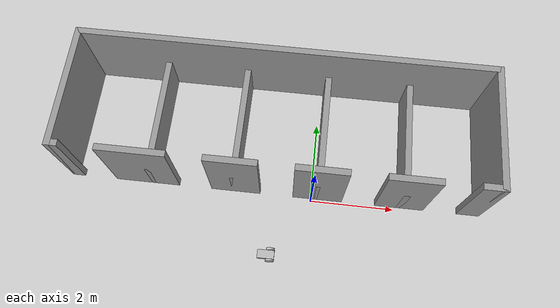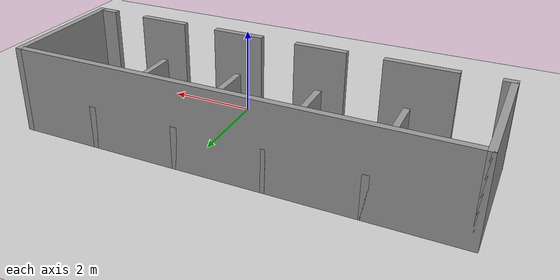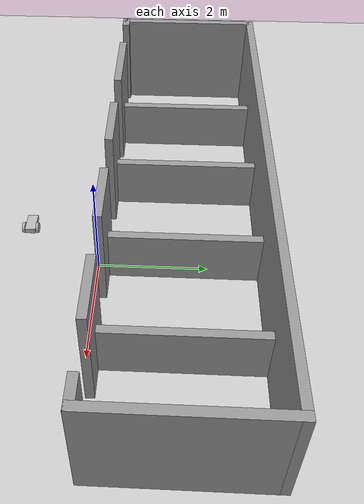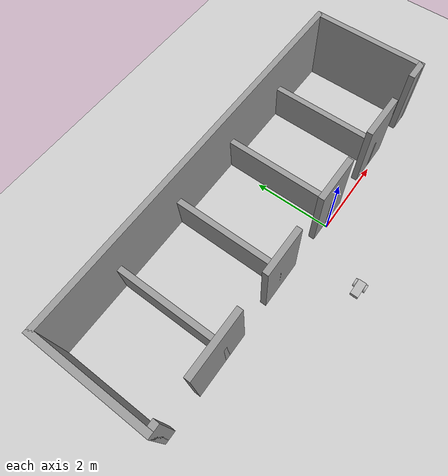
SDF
<sdf version="1.7">
 <world name="default">
  <light name="sun" type="directional">
   <diffuse>0.8 0.8 0.8 1</diffuse>
   <specular>0.2 0.2 0.2 1</specular>
   <attenuation>
    <range>1000</range>
    <constant>0.9</constant>
    <linear>0.01</linear>
    <quadratic>0.001</quadratic>
   </attenuation>
   <direction>-0.5 0.1 -0.9</direction>
   <spot><inner_angle>0</inner_angle><outer_angle>0</outer_angle><falloff>0</falloff></spot>
  </light>
  <model name="ground_plane">
   <static>1</static>
   <link name="link">
    <collision name="collision">
     <geometry><plane><normal>0 0 1</normal><size>100 100</size></plane></geometry>
     <surface><friction><ode><mu>100</mu><mu2>50</mu2></ode></friction></surface>
    </collision>
    <visual name="visual">
     <cast_shadows>0</cast_shadows>
     <geometry><plane><normal>0 0 1</normal><size>100 100</size></plane></geometry>
     <material>
      <script><uri>file://media/materials/scripts/gazebo.material</uri><name>Gazebo/Grey</name></script>
     </material>
    </visual>
   </link>
  </model>
  <gravity>0 0 -9.8</gravity>
  <magnetic_field>6e-06 2.3e-05 -4.2e-05</magnetic_field>
  <atmosphere type="adiabatic"/>
  <physics type="ode">
   <max_step_size>0.001</max_step_size>
   <real_time_factor>1</real_time_factor>
   <real_time_update_rate>1000</real_time_update_rate>
  </physics>
  <scene><ambient>0.4 0.4 0.4 1</ambient><background>0.7 0.7 0.7 1</background><shadows>1</shadows></scene>
  <spherical_coordinates>
   <surface_model>EARTH_WGS84</surface_model>
   <latitude_deg>0</latitude_deg>
   <longitude_deg>0</longitude_deg>
   <elevation>0</elevation>
   <heading_deg>0</heading_deg>
  </spherical_coordinates>
  <model name="Garage_1">
   <pose>-0.922682 1.57332 0 0 -0 0</pose>
   <link name="Wall_0">
    <pose>0 -1.425 0 0 -0 0</pose>
    <visual name="Wall_0_Visual_0">
     <pose>-4.8475 0 1 0 -0 0</pose>
     <geometry><box><size>0.305 0.15 2</size></box></geometry>
     <material>
      <script><uri>file://media/materials/scripts/gazebo.material</uri><name>Gazebo/Grey</name></script>
      <ambient>1 1 1 1</ambient>
     </material>
     <meta><layer>0</layer></meta>
    </visual>
    <collision name="Wall_0_Collision_0">
     <geometry><box><size>0.305 0.15 2</size></box></geometry>
     <pose>-4.8475 0 1 0 -0 0</pose>
    </collision>
    <visual name="Wall_0_Visual_1">
     <pose>-3.11 0 1 0 -0 0</pose>
     <geometry><box><size>1.57 0.15 2</size></box></geometry>
     <material>
      <script><uri>file://media/materials/scripts/gazebo.material</uri><name>Gazebo/Grey</name></script>
      <ambient>1 1 1 1</ambient>
     </material>
     <meta><layer>0</layer></meta>
    </visual>
    <collision name="Wall_0_Collision_1">
     <geometry><box><size>1.57 0.15 2</size></box></geometry>
     <pose>-3.11 0 1 0 -0 0</pose>
    </collision>
    <visual name="Wall_0_Visual_2">
     <pose>-0.925 0 1 0 -0 0</pose>
     <geometry><box><size>1.2 0.15 2</size></box></geometry>
     <material>
      <script><uri>file://media/materials/scripts/gazebo.material</uri><name>Gazebo/Grey</name></script>
      <ambient>1 1 1 1</ambient>
     </material>
     <meta><layer>0</layer></meta>
    </visual>
    <collision name="Wall_0_Collision_2">
     <geometry><box><size>1.2 0.15 2</size></box></geometry>
     <pose>-0.925 0 1 0 -0 0</pose>
    </collision>
    <visual name="Wall_0_Visual_3">
     <pose>1.075 0 1 0 -0 0</pose>
     <geometry><box><size>1.2 0.15 2</size></box></geometry>
     <material>
      <script><uri>file://media/materials/scripts/gazebo.material</uri><name>Gazebo/Grey</name></script>
      <ambient>1 1 1 1</ambient>
     </material>
     <meta><layer>0</layer></meta>
    </visual>
    <collision name="Wall_0_Collision_3">
     <geometry><box><size>1.2 0.15 2</size></box></geometry>
     <pose>1.075 0 1 0 -0 0</pose>
    </collision>
    <visual name="Wall_0_Visual_4">
     <pose>3.065 0 1 0 -0 0</pose>
     <geometry><box><size>1.18 0.15 2</size></box></geometry>
     <material>
      <script><uri>file://media/materials/scripts/gazebo.material</uri><name>Gazebo/Grey</name></script>
      <ambient>1 1 1 1</ambient>
     </material>
     <meta><layer>0</layer></meta>
    </visual>
    <collision name="Wall_0_Collision_4">
     <geometry><box><size>1.18 0.15 2</size></box></geometry>
     <pose>3.065 0 1 0 -0 0</pose>
    </collision>
    <visual name="Wall_0_Visual_5">
     <pose>4.7275 0 1 0 -0 0</pose>
     <geometry><box><size>0.545001 0.15 2</size></box></geometry>
     <material>
      <script><uri>file://media/materials/scripts/gazebo.material</uri><name>Gazebo/Grey</name></script>
      <ambient>1 1 1 1</ambient>
     </material>
     <meta><layer>0</layer></meta>
    </visual>
    <collision name="Wall_0_Collision_5">
     <geometry><box><size>0.545001 0.15 2</size></box></geometry>
     <pose>4.7275 0 1 0 -0 0</pose>
    </collision>
   </link>
   <link name="Wall_11">
    <collision name="Wall_11_Collision">
     <geometry><box><size>3 0.15 1</size></box></geometry>
     <pose>0 0 0.5 0 -0 0</pose>
    </collision>
    <visual name="Wall_11_Visual">
     <pose>0 0 0.5 0 -0 0</pose>
     <geometry><box><size>3 0.15 1</size></box></geometry>
     <material>
      <script><uri>file://media/materials/scripts/gazebo.material</uri><name>Gazebo/Grey</name></script>
      <ambient>1 1 1 1</ambient>
     </material>
     <meta><layer>0</layer></meta>
    </visual>
    <pose>-0.935 0 0 0 -0 1.5708</pose>
   </link>
   <link name="Wall_13">
    <collision name="Wall_13_Collision">
     <geometry><box><size>3 0.15 1</size></box></geometry>
     <pose>0 0 0.5 0 -0 0</pose>
    </collision>
    <visual name="Wall_13_Visual">
     <pose>0 0 0.5 0 -0 0</pose>
     <geometry><box><size>3 0.15 1</size></box></geometry>
     <material>
      <script><uri>file://media/materials/scripts/gazebo.material</uri><name>Gazebo/Grey</name></script>
      <ambient>1 1 1 1</ambient>
     </material>
     <meta><layer>0</layer></meta>
    </visual>
    <pose>1.075 0 0 0 -0 1.5708</pose>
   </link>
   <link name="Wall_15">
    <collision name="Wall_15_Collision">
     <geometry><box><size>3 0.15 1</size></box></geometry>
     <pose>0 0 0.5 0 -0 0</pose>
    </collision>
    <visual name="Wall_15_Visual">
     <pose>0 0 0.5 0 -0 0</pose>
     <geometry><box><size>3 0.15 1</size></box></geometry>
     <material>
      <script><uri>file://media/materials/scripts/gazebo.material</uri><name>Gazebo/Grey</name></script>
      <ambient>1 1 1 1</ambient>
     </material>
     <meta><layer>0</layer></meta>
    </visual>
    <pose>3.075 0 0 0 -0 1.5708</pose>
   </link>
   <link name="Wall_3">
    <collision name="Wall_3_Collision">
     <geometry><box><size>3 0.15 2</size></box></geometry>
     <pose>0 0 1 0 -0 0</pose>
    </collision>
    <visual name="Wall_3_Visual">
     <pose>0 0 1 0 -0 0</pose>
     <geometry><box><size>3 0.15 2</size></box></geometry>
     <material>
      <script><uri>file://media/materials/scripts/gazebo.material</uri><name>Gazebo/Grey</name></script>
      <ambient>1 1 1 1</ambient>
     </material>
     <meta><layer>0</layer></meta>
    </visual>
    <pose>-4.925 0 0 0 -0 1.5708</pose>
   </link>
   <link name="Wall_5">
    <collision name="Wall_5_Collision">
     <geometry><box><size>3 0.15 2</size></box></geometry>
     <pose>0 0 1 0 -0 0</pose>
    </collision>
    <visual name="Wall_5_Visual">
     <pose>0 0 1 0 -0 0</pose>
     <geometry><box><size>3 0.15 2</size></box></geometry>
     <material>
      <script><uri>file://media/materials/scripts/gazebo.material</uri><name>Gazebo/Grey</name></script>
      <ambient>1 1 1 1</ambient>
     </material>
     <meta><layer>0</layer></meta>
    </visual>
    <pose>4.925 0 0 0 -0 1.5708</pose>
   </link>
   <link name="Wall_7">
    <collision name="Wall_7_Collision">
     <geometry><box><size>10 0.15 2</size></box></geometry>
     <pose>0 0 1 0 -0 0</pose>
    </collision>
    <visual name="Wall_7_Visual">
     <pose>0 0 1 0 -0 0</pose>
     <geometry><box><size>10 0.15 2</size></box></geometry>
     <material>
      <script><uri>file://media/materials/scripts/gazebo.material</uri><name>Gazebo/Grey</name></script>
      <ambient>1 1 1 1</ambient>
     </material>
     <meta><layer>0</layer></meta>
    </visual>
    <pose>0 1.425 0 0 -0 0</pose>
   </link>
   <link name="Wall_9">
    <collision name="Wall_9_Collision">
     <geometry><box><size>3 0.15 1</size></box></geometry>
     <pose>0 0 0.5 0 -0 0</pose>
    </collision>
    <visual name="Wall_9_Visual">
     <pose>0 0 0.5 0 -0 0</pose>
     <geometry><box><size>3 0.15 1</size></box></geometry>
     <material>
      <script><uri>file://media/materials/scripts/gazebo.material</uri><name>Gazebo/Grey</name></script>
      <ambient>1 1 1 1</ambient>
     </material>
     <meta><layer>0</layer></meta>
    </visual>
    <pose>-2.925 0 0 0 -0 1.5708</pose>
   </link>
   <static>1</static>
  </model>
  <model name="my_robot_1">
   <static>0</static>
   <link name="chassis">
    <pose>0 0 0.1 0 -0 0</pose>
    <collision name="collision"><geometry><box><size>0.4 0.2 0.1</size></box></geometry></collision>
    <visual name="visual"><geometry><box><size>0.4 0.2 0.1</size></box></geometry></visual>
    <collision name="caster_collision">
     <pose>-0.15 0 -0.05 0 -0 0</pose>
     <geometry><sphere><radius>0.05</radius></sphere></geometry>
     <surface><friction><ode><mu>0</mu><mu2>0</mu2><slip1>1</slip1><slip2>1</slip2></ode></friction></surface>
    </collision>
    <visual name="caster_visual">
     <pose>-0.15 0 -0.05 0 -0 0</pose>
     <geometry><sphere><radius>0.05</radius></sphere></geometry>
    </visual>
    <inertial>
     <inertia><ixx>1</ixx><ixy>0</ixy><ixz>0</ixz><iyy>1</iyy><iyz>0</iyz><izz>1</izz></inertia>
     <mass>1</mass>
    </inertial>
   </link>
   <link name="left_wheel">
    <pose>0.1 0.13 0.1 -0 1.5707 1.5707</pose>
    <collision name="collision">
     <geometry><cylinder><radius>0.1</radius><length>0.05</length></cylinder></geometry>
    </collision>
    <visual name="visual">
     <geometry><cylinder><radius>0.1</radius><length>0.05</length></cylinder></geometry>
    </visual>
    <inertial>
     <inertia><ixx>1</ixx><ixy>0</ixy><ixz>0</ixz><iyy>1</iyy><iyz>0</iyz><izz>1</izz></inertia>
     <mass>1</mass>
    </inertial>
   </link>
   <link name="right_wheel">
    <pose>0.1 -0.13 0.1 -0 1.5707 1.5707</pose>
    <collision name="collision">
     <geometry><cylinder><radius>0.1</radius><length>0.05</length></cylinder></geometry>
    </collision>
    <visual name="visual">
     <geometry><cylinder><radius>0.1</radius><length>0.05</length></cylinder></geometry>
    </visual>
    <inertial>
     <inertia><ixx>1</ixx><ixy>0</ixy><ixz>0</ixz><iyy>1</iyy><iyz>0</iyz><izz>1</izz></inertia>
     <mass>1</mass>
    </inertial>
   </link>
   <joint name="left_wheel_hinge" type="revolute">
    <pose>0 0 -0.03 0 -0 0</pose>
    <child>left_wheel</child>
    <parent>chassis</parent>
    <axis>
     <xyz expressed_in="__model__">0 1 0</xyz>
     <limit><lower>-1e+16</lower><upper>1e+16</upper></limit>
     <dynamics><spring_reference>0</spring_reference><spring_stiffness>0</spring_stiffness></dynamics>
    </axis>
   </joint>
   <joint name="right_wheel_hinge" type="revolute">
    <pose>0 0 0.03 0 -0 0</pose>
    <child>right_wheel</child>
    <parent>chassis</parent>
    <axis>
     <xyz expressed_in="__model__">0 1 0</xyz>
     <limit><lower>-1e+16</lower><upper>1e+16</upper></limit>
     <dynamics><spring_reference>0</spring_reference><spring_stiffness>0</spring_stiffness></dynamics>
    </axis>
   </joint>
   <pose>-0.935875 -1.41423 3e-06 -2.2e-05 -2.2e-05 0.008518</pose>
  </model>
 </world>
</sdf>
